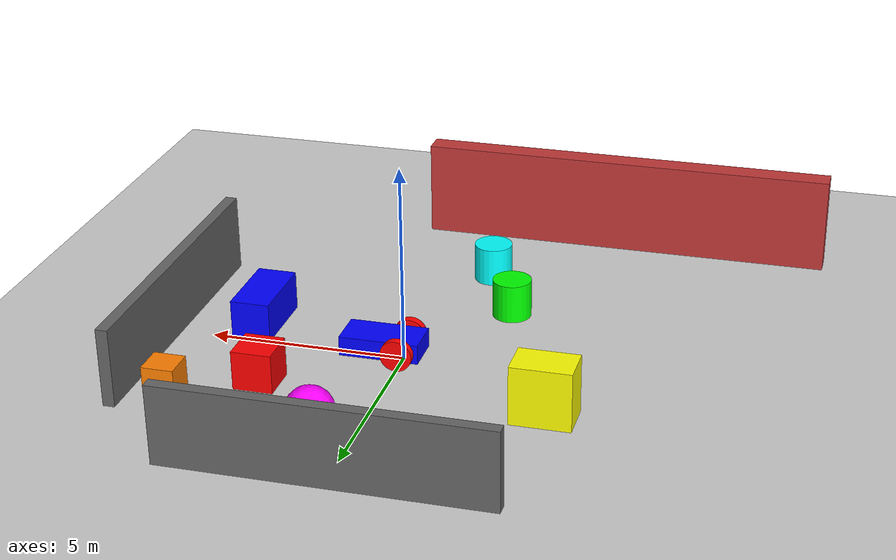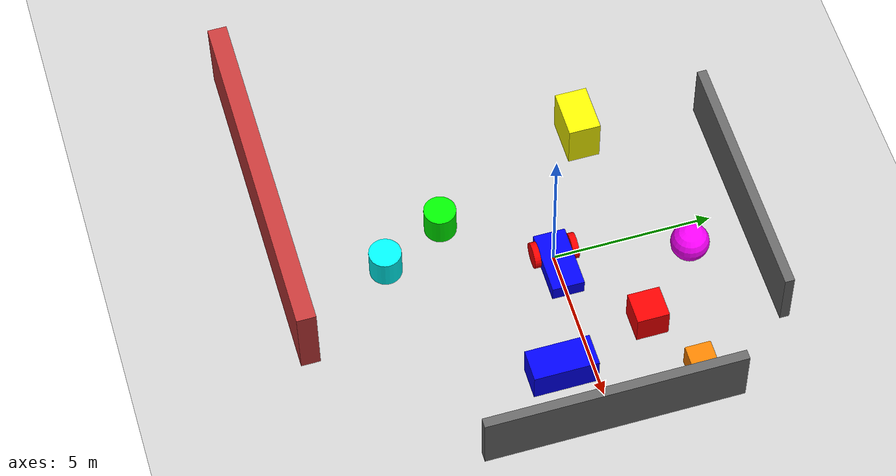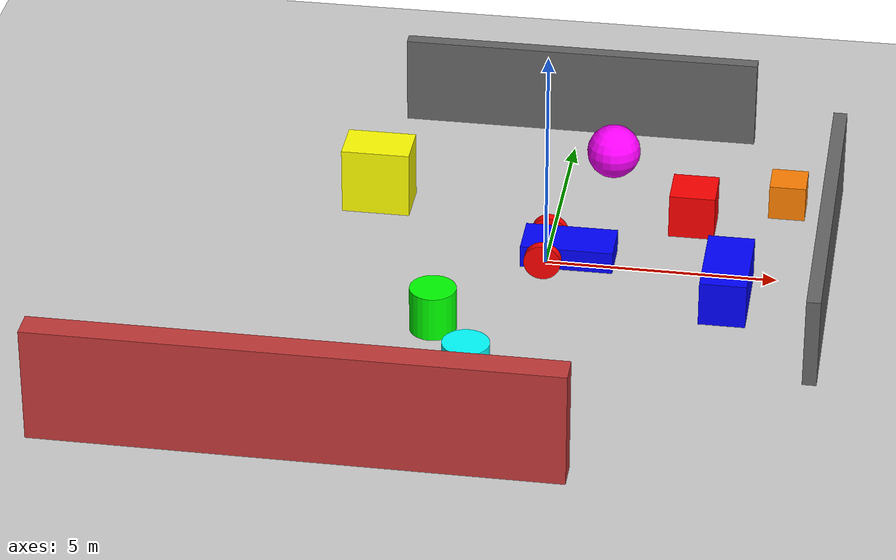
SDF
<?xml version="1.0" ?>
<sdf version="1.10">
    <world name="car_world">
        <physics name="1ms" type="ignored">
            <max_step_size>0.001</max_step_size>
            <real_time_factor>1.0</real_time_factor>
        </physics>
        <plugin
            filename="gz-sim-physics-system"
            name="gz::sim::systems::Physics">
        </plugin>
        <plugin
            filename="gz-sim-user-commands-system"
            name="gz::sim::systems::UserCommands">
        </plugin>
        <plugin
            filename="gz-sim-scene-broadcaster-system"
            name="gz::sim::systems::SceneBroadcaster">
        </plugin>

        <plugin filename="gz-sim-imu-system"
                name="gz::sim::systems::Imu">
        </plugin>

        <light type="directional" name="sun">
            <cast_shadows>true</cast_shadows>
            <pose>0 0 10 0 0 0</pose>
            <diffuse>0.8 0.8 0.8 1</diffuse>
            <specular>0.2 0.2 0.2 1</specular>
            <attenuation>
                <range>1000</range>
                <constant>0.9</constant>
                <linear>0.01</linear>
                <quadratic>0.001</quadratic>
            </attenuation>
            <direction>-0.5 0.1 -0.9</direction>
        </light>

        <model name="ground_plane">
            <static>true</static>
            <link name="link">
                <collision name="collision">
                <geometry>
                    <plane>
                    <normal>0 0 1</normal>
                    </plane>
                </geometry>
                </collision>
                <visual name="visual">
                <geometry>
                    <plane>
                    <normal>0 0 1</normal>
                    <size>100 100</size>
                    </plane>
                </geometry>
                <material>
                    <ambient>0.8 0.8 0.8 1</ambient>
                    <diffuse>0.8 0.8 0.8 1</diffuse>
                    <specular>0.8 0.8 0.8 1</specular>
                </material>
                </visual>
            </link>
        </model>
	<model name='vehicle_blue' canonical_link='chassis'>
	    <pose relative_to='world'>0 0 0 0 0 0</pose>
	    <link name='chassis'>
        	<pose relative_to='__model__'>0.5 0 0.4 0 0 0</pose>
    	    <inertial> <!--inertial properties of the link mass, inertia matix-->
        	<mass>1.14395</mass>
        	<inertia>
            		<ixx>0.095329</ixx>
            		<ixy>0</ixy>
            		<ixz>0</ixz>
            		<iyy>0.381317</iyy>
            		<iyz>0</iyz>
            		<izz>0.476646</izz>
        	</inertia>
    	    </inertial>
    	    <visual name='visual'>
        	<geometry>
            		<box>
                		<size>2.0 1.0 0.5</size>
            		</box>
        	</geometry>
        	<!--let's add color to our link-->
        	<material>
            		<ambient>0.0 0.0 1.0 1</ambient>
            		<diffuse>0.0 0.0 1.0 1</diffuse>
            		<specular>0.0 0.0 1.0 1</specular>
        	</material>
    	    </visual>
		    <collision name='collision'>
            		<geometry>
                		<box>
                    			<size>2.0 1.0 0.5</size>
                		</box>
            		</geometry>
        	</collision>
    	    </link>
            <link name='left_wheel'>
                <pose relative_to="chassis">-0.5 0.6 0 -1.5707 0 0</pose>
                <inertial>
                    <mass>1</mass>
                    <inertia>
                        <ixx>0.043333</ixx>
                        <ixy>0</ixy>
                        <ixz>0</ixz>
                        <iyy>0.043333</iyy>
                        <iyz>0</iyz>
                        <izz>0.08</izz>
                    </inertia>
                </inertial>
                <visual name='visual'>
                    <geometry>
                        <cylinder>
                            <radius>0.4</radius>
                            <length>0.2</length>
                        </cylinder>
                    </geometry>
                    <material>
                        <ambient>1.0 0.0 0.0 1</ambient>
                        <diffuse>1.0 0.0 0.0 1</diffuse>
                        <specular>1.0 0.0 0.0 1</specular>
                    </material>
                </visual>
            <collision name='collision'>
                    <geometry>
                        <cylinder>
                            <radius>0.4</radius>
                            <length>0.2</length>
                        </cylinder>
                    </geometry>
            </collision>

            <sensor name="imu_sensor" type="imu">
                <always_on>1</always_on>
                <update_rate>1</update_rate>
                <visualize>true</visualize>
                <topic>imu</topic>
            </sensor>
            </link>
            <!--The same as left wheel but with different position-->
            <link name='right_wheel'>
                <pose relative_to="chassis">-0.5 -0.6 0 -1.5707 0 0</pose> <!--angles are in radian-->
                <inertial>
                    <mass>1</mass>
                    <inertia>
                        <ixx>0.043333</ixx>
                        <ixy>0</ixy>
                        <ixz>0</ixz>
                        <iyy>0.043333</iyy>
                        <iyz>0</iyz>
                        <izz>0.08</izz>
                    </inertia>
                </inertial>
                <visual name='visual'>
                    <geometry>
                        <cylinder>
                            <radius>0.4</radius>
                            <length>0.2</length>
                        </cylinder>
                    </geometry>
                    <material>
                        <ambient>1.0 0.0 0.0 1</ambient>
                        <diffuse>1.0 0.0 0.0 1</diffuse>
                        <specular>1.0 0.0 0.0 1</specular>
                    </material>
                </visual>
                <collision name='collision'>
                    <geometry>
                        <cylinder>
                            <radius>0.4</radius>
                            <length>0.2</length>
                        </cylinder>
                    </geometry>
                </collision>
            </link>

            <frame name="caster_frame" attached_to='chassis'>
                <pose>0.8 0 -0.2 0 0 0</pose>
            </frame>

            <!--caster wheel-->
            <link name='caster'>
                <pose relative_to='caster_frame'/>
                <inertial>
                    <mass>1</mass>
                    <inertia>
                        <ixx>0.016</ixx>
                        <ixy>0</ixy>
                        <ixz>0</ixz>
                        <iyy>0.016</iyy>
                        <iyz>0</iyz>
                        <izz>0.016</izz>
                    </inertia>
                </inertial>
                <visual name='visual'>
                    <geometry>
                        <sphere>
                            <radius>0.2</radius>
                        </sphere>
                    </geometry>
                    <material>
                        <ambient>0.0 1 0.0 1</ambient>
                        <diffuse>0.0 1 0.0 1</diffuse>
                        <specular>0.0 1 0.0 1</specular>
                    </material>
                </visual>
                <collision name='collision'>
                    <geometry>
                        <sphere>
                            <radius>0.2</radius>
                        </sphere>
                    </geometry>
                </collision>
            </link>
            <joint name='left_wheel_joint' type='revolute'>
                <pose relative_to='left_wheel'/>
                <parent>chassis</parent>
                <child>left_wheel</child>
                <axis>
                    <xyz expressed_in='__model__'>0 1 0</xyz> <!--can be defined as any frame or even arbitrary frames-->
                    <limit>
                        <lower>-1.79769e+308</lower>    <!--negative infinity-->
                        <upper>1.79769e+308</upper>     <!--positive infinity-->
                    </limit>
                </axis>
            </joint>

            <joint name='right_wheel_joint' type='revolute'>
                <pose relative_to='right_wheel'/>
                <parent>chassis</parent>
                <child>right_wheel</child>
                <axis>
                    <xyz expressed_in='__model__'>0 1 0</xyz>
                    <limit>
                        <lower>-1.79769e+308</lower>    <!--negative infinity-->
                        <upper>1.79769e+308</upper>     <!--positive infinity-->
                    </limit>
                </axis>
            </joint>

            <joint name='caster_wheel' type='ball'>
                <parent>chassis</parent>
                <child>caster</child>
            </joint>
            <plugin
                filename="gz-sim-diff-drive-system"
                name="gz::sim::systems::DiffDrive">
                <left_joint>left_wheel_joint</left_joint>
                <right_joint>right_wheel_joint</right_joint>
                <wheel_separation>1.2</wheel_separation>
                <wheel_radius>0.4</wheel_radius>
                <odom_publish_frequency>1</odom_publish_frequency>
                <topic>cmd_vel</topic>
            </plugin>

            <!-- Moving Forward-->
            <plugin filename="gz-sim-triggered-publisher-system"
                    name="gz::sim::systems::TriggeredPublisher">
                <input type="gz.msgs.Int32" topic="/keyboard/keypress">
                    <match field="data">16777235</match>
                </input>
                <output type="gz.msgs.Twist" topic="/cmd_vel">
                    linear: {x: 0.5}, angular: {z: 0.0}
                </output>
            </plugin>

            <!-- Moving Backward-->
            <plugin filename="gz-sim-triggered-publisher-system"
                    name="gz::sim::systems::TriggeredPublisher">
                <input type="gz.msgs.Int32" topic="/keyboard/keypress">
                    <match field="data">16777237</match>
                </input>
                <output type="gz.msgs.Twist" topic="/cmd_vel">
                    linear: {x: -0.5}, angular: {z: 0.0}
                </output>
            </plugin>

            <!-- Moving left-->
            <plugin filename="gz-sim-triggered-publisher-system"
                    name="gz::sim::systems::TriggeredPublisher">
                <input type="gz.msgs.Int32" topic="/keyboard/keypress">
                    <match field="data">16777234</match>
                </input>
                <output type="gz.msgs.Twist" topic="/cmd_vel">
                    linear: {x: 0.0}, angular: {z: 0.5}
                </output>
            </plugin>

            <!-- Moving right-->
            <plugin filename="gz-sim-triggered-publisher-system"
                    name="gz::sim::systems::TriggeredPublisher">
                <input type="gz.msgs.Int32" topic="/keyboard/keypress">
                    <match field="data">16777236</match>
                </input>
                <output type="gz.msgs.Twist" topic="/cmd_vel">
                    linear: {x: 0.0}, angular: {z: -0.5}
                </output>
            </plugin>
	</model>
    <!-- Box Obstacle 1 -->
    <model name="obstacle_1">
        <static>true</static>
        <pose>3 2 0.5 0 0 0</pose> <!-- x y z roll pitch yaw -->
        <link name="link">
            <collision name="collision">
                <geometry>
                    <box>
                        <size>1 1 1</size> <!-- width, depth, height -->
                    </box>
                </geometry>
            </collision>
            <visual name="visual">
                <geometry>
                    <box>
                        <size>1 1 1</size>
                    </box>
                </geometry>
                <material>
                    <ambient>1 0 0 1</ambient>
                    <diffuse>1 0 0 1</diffuse>
                    <specular>0.5 0.5 0.5 1</specular>
                </material>
            </visual>
        </link>
    </model>

    <!-- Cylinder Obstacle 2 -->
    <model name="obstacle_2">
        <static>true</static>
        <pose>-2 -3 0.5 0 0 0</pose>
        <link name="link">
            <collision name="collision">
                <geometry>
                    <cylinder>
                        <radius>0.5</radius>
                        <length>1.0</length>
                    </cylinder>
                </geometry>
            </collision>
            <visual name="visual">
                <geometry>
                    <cylinder>
                        <radius>0.5</radius>
                        <length>1.0</length>
                    </cylinder>
                </geometry>
                <material>
                    <ambient>0 1 0 1</ambient>
                    <diffuse>0 1 0 1</diffuse>
                </material>
            </visual>
        </link>
    </model>
    <!-- Wall 1 -->
    <model name="wall_1">
        <static>true</static>
        <pose>6 0 1 0 0 0</pose>
        <link name="link">
            <collision name="collision">
                <geometry>
                    <box>
                        <size>0.3 8 2</size>
                    </box>
                </geometry>
            </collision>
            <visual name="visual">
                <geometry>
                    <box>
                        <size>0.3 8 2</size>
                    </box>
                </geometry>
                <material>
                    <ambient>0.4 0.4 0.4 1</ambient>
                    <diffuse>0.4 0.4 0.4 1</diffuse>
                    <specular>0.2 0.2 0.2 1</specular>
                </material>
            </visual>
        </link>
    </model>

    <!-- Wall 2 -->
    <model name="wall_2">
        <static>true</static>
        <pose>0 6 1 0 0 1.5708</pose>
        <link name="link">
            <collision name="collision">
                <geometry>
                    <box>
                        <size>0.3 8 2</size>
                    </box>
                </geometry>
            </collision>
            <visual name="visual">
                <geometry>
                    <box>
                        <size>0.3 8 2</size>
                    </box>
                </geometry>
                <material>
                    <ambient>0.4 0.4 0.4 1</ambient>
                    <diffuse>0.4 0.4 0.4 1</diffuse>
                    <specular>0.2 0.2 0.2 1</specular>
                </material>
            </visual>
        </link>
    </model>

    <!-- Wall 3 -->
    <model name="wall_3">
        <static>true</static>
        <pose>-4 -8 1 0 0 1.5708</pose>
        <link name="link">
            <collision name="collision">
                <geometry>
                    <box>
                        <size>0.6 11 3</size>
                    </box>
                </geometry>
            </collision>
            <visual name="visual">
                <geometry>
                    <box>
                        <size>0.6 11 3</size>
                    </box>
                </geometry>
                <material>
                    <ambient>0.76 0.22 0.22 1</ambient>
                    <diffuse>0.76 0.22 0.22 1</diffuse>
                    <specular>0.56 0.44 0.44 1</specular>
                </material>
            </visual>
        </link>
    </model>

    <!-- Obstacle 3 -->
    <model name="obstacle_3">
        <static>true</static>
        <pose>4 -1 0.5 0 0 0</pose>
        <link name="link">
            <collision name="collision">
                <geometry>
                    <box>
                        <size>1 2 1</size>
                    </box>
                </geometry>
            </collision>
            <visual name="visual">
                <geometry>
                    <box>
                        <size>1 2 1</size>
                    </box>
                </geometry>
                <material>
                    <ambient>0 0 1 1</ambient>
                    <diffuse>0 0 1 1</diffuse>
                </material>
            </visual>
        </link>
    </model>

    <!-- Obstacle 4 -->
    <model name="obstacle_4">
        <static>true</static>
        <pose>-4 2 0.75 0 0 0</pose>
        <link name="link">
            <collision name="collision">
                <geometry>
                    <box>
                        <size>1.5 1 1.5</size>
                    </box>
                </geometry>
            </collision>
            <visual name="visual">
                <geometry>
                    <box>
                        <size>1.5 1 1.5</size>
                    </box>
                </geometry>
                <material>
                    <ambient>1 1 0 1</ambient>
                    <diffuse>1 1 0 1</diffuse>
                </material>
            </visual>
        </link>
    </model>

    <!-- Obstacle 5 -->
    <model name="obstacle_5">
        <static>true</static>
        <pose>1 4 0.6 0 0 0</pose>
        <link name="link">
            <collision name="collision">
                <geometry>
                    <sphere>
                        <radius>0.6</radius>
                    </sphere>
                </geometry>
            </collision>
            <visual name="visual">
                <geometry>
                    <sphere>
                        <radius>0.6</radius>
                    </sphere>
                </geometry>
                <material>
                    <ambient>1 0 1 1</ambient>
                    <diffuse>1 0 1 1</diffuse>
                </material>
            </visual>
        </link>
    </model>

    <!-- Obstacle 6 -->
    <model name="obstacle_6">
        <static>true</static>
        <pose>-1 -5 0.5 0 0 0</pose>
        <link name="link">
            <collision name="collision">
                <geometry>
                    <cylinder>
                        <radius>0.5</radius>
                        <length>1.0</length>
                    </cylinder>
                </geometry>
            </collision>
            <visual name="visual">
                <geometry>
                    <cylinder>
                        <radius>0.5</radius>
                        <length>1.0</length>
                    </cylinder>
                </geometry>
                <material>
                    <ambient>0 1 1 1</ambient>
                    <diffuse>0 1 1 1</diffuse>
                </material>
            </visual>
        </link>
    </model>

    <!-- Obstacle 7 -->
    <model name="obstacle_7">
        <static>true</static>
        <pose>5 3 0.4 0 0 0</pose>
        <link name="link">
            <collision name="collision">
                <geometry>
                    <box>
                        <size>0.8 0.8 0.8</size>
                    </box>
                </geometry>
            </collision>
            <visual name="visual">
                <geometry>
                    <box>
                        <size>0.8 0.8 0.8</size>
                    </box>
                </geometry>
                <material>
                    <ambient>1 0.5 0 1</ambient>
                    <diffuse>1 0.5 0 1</diffuse>
                </material>
            </visual>
        </link>
    </model>
    </world>
</sdf>
